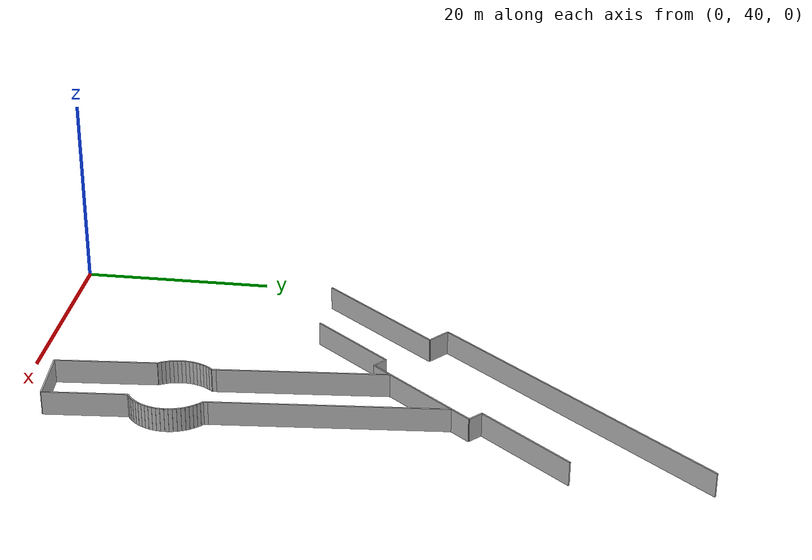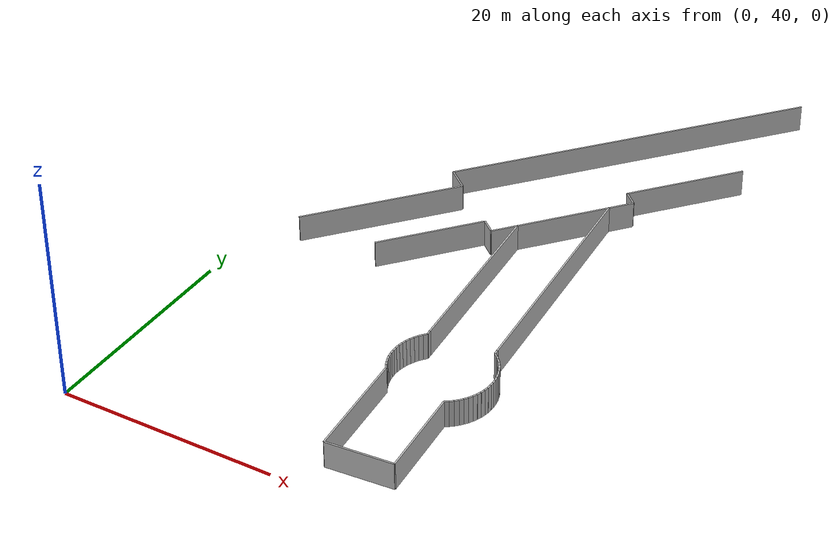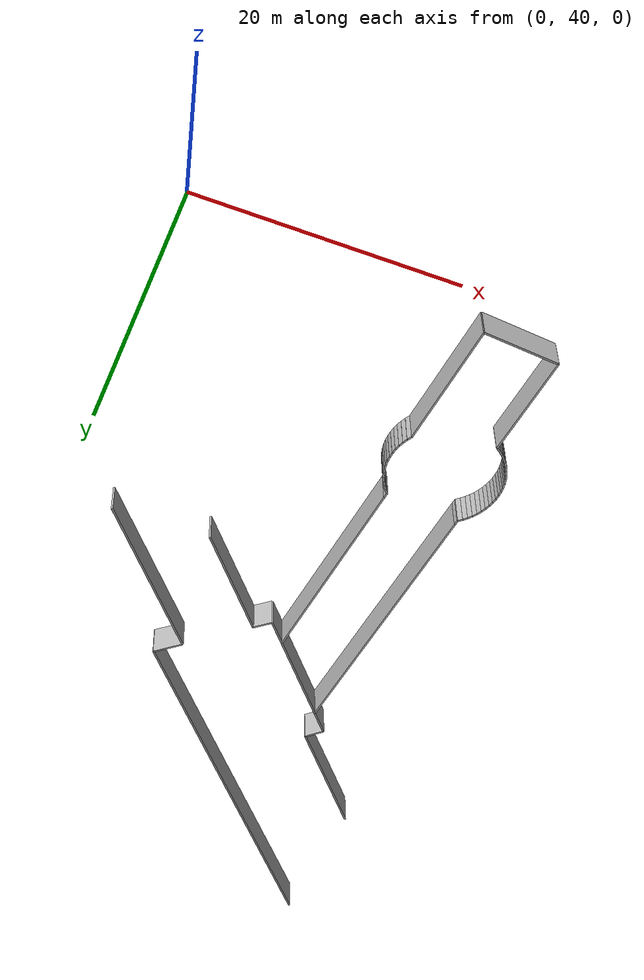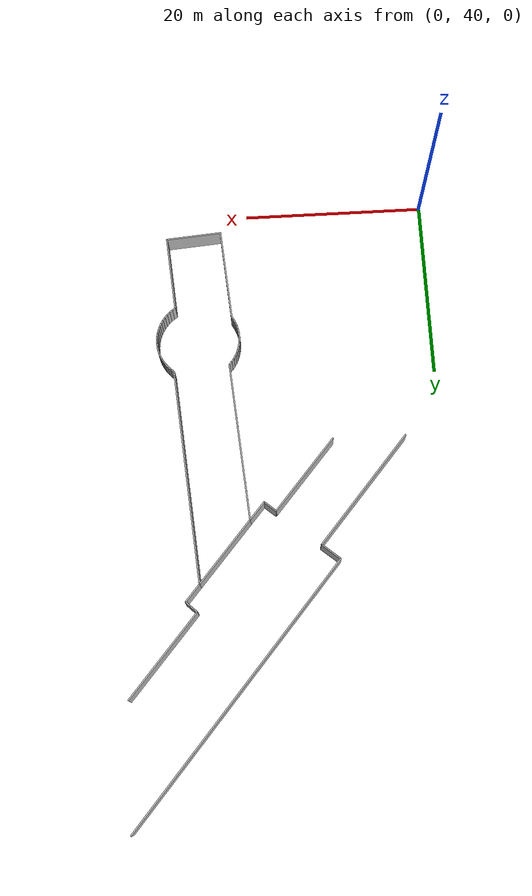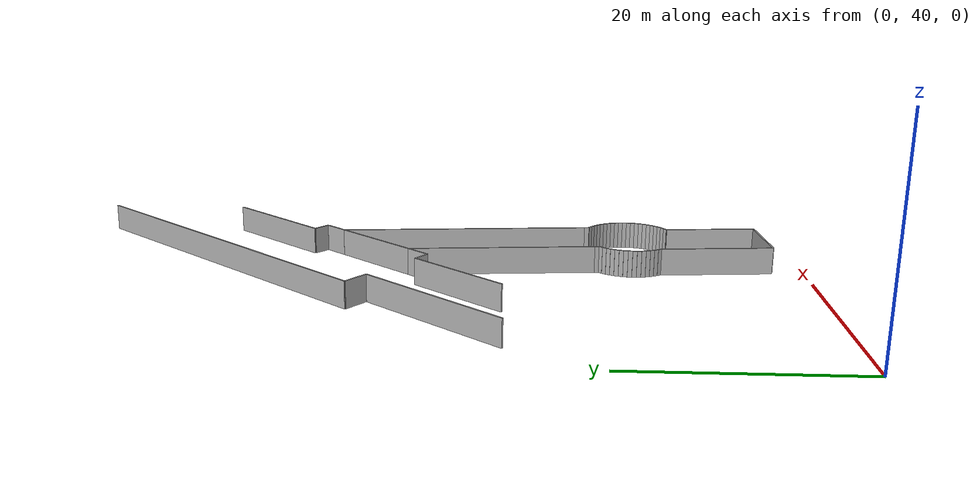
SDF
<?xml version="1.0" ?>
<sdf version="1.6">
  <model name="sps_0419">
    <pose frame="">0 0 0 0 -0 0</pose>
    <static>1</static>
    <self_collide>0</self_collide>
    <allow_auto_disable>0</allow_auto_disable>
    <link name="Wall34">
      <kinematic>0</kinematic>
      <gravity>1</gravity>
      <self_collide>0</self_collide>
      <collision name="collision">
        <geometry>
          <box>
            <size>15.2064 0.15 2.5</size>
          </box>
        </geometry>
        <pose frame="">0 0 0 0 -0 0</pose>
      </collision>
      <visual name="visual">
        <geometry>
          <box>
            <size>15.2064 0.15 2.5</size>
          </box>
        </geometry>
        <pose frame="">0 0 0 0 -0 0</pose>
        <cast_shadows>1</cast_shadows>
        <transparency>0.0</transparency>
      </visual>
      <pose frame="">8.95257 73.6938 1.25 0 0 -2.27376</pose>
    </link>
    <link name="Wall41">
      <kinematic>0</kinematic>
      <gravity>1</gravity>
      <self_collide>0</self_collide>
      <collision name="collision">
        <geometry>
          <box>
            <size>10.116 0.15 2.5</size>
          </box>
        </geometry>
        <pose frame="">0 0 0 0 -0 0</pose>
      </collision>
      <visual name="visual">
        <geometry>
          <box>
            <size>10.116 0.15 2.5</size>
          </box>
        </geometry>
        <pose frame="">0 0 0 0 -0 0</pose>
        <cast_shadows>1</cast_shadows>
        <transparency>0.0</transparency>
      </visual>
      <pose frame="">15.181 71.753 1.25 0 -0 0.868142</pose>
    </link>
    <link name="Wall42">
      <kinematic>0</kinematic>
      <gravity>1</gravity>
      <self_collide>0</self_collide>
      <collision name="collision">
        <geometry>
          <box>
            <size>1.60706 0.15 2.5</size>
          </box>
        </geometry>
        <pose frame="">0 0 0 0 -0 0</pose>
      </collision>
      <visual name="visual">
        <geometry>
          <box>
            <size>1.60706 0.15 2.5</size>
          </box>
        </geometry>
        <pose frame="">0 0 0 0 -0 0</pose>
        <cast_shadows>1</cast_shadows>
        <transparency>0.0</transparency>
      </visual>
      <pose frame="">19.0619 75.0924 1.25 0 0 -0.70461</pose>
    </link>
    <link name="Wall43">
      <kinematic>0</kinematic>
      <gravity>1</gravity>
      <self_collide>0</self_collide>
      <collision name="collision">
        <geometry>
          <box>
            <size>2.44092 0.15 2.5</size>
          </box>
        </geometry>
        <pose frame="">0 0 0 0 -0 0</pose>
      </collision>
      <visual name="visual">
        <geometry>
          <box>
            <size>2.44092 0.15 2.5</size>
          </box>
        </geometry>
        <pose frame="">0 0 0 0 -0 0</pose>
        <cast_shadows>1</cast_shadows>
        <transparency>0.0</transparency>
      </visual>
      <pose frame="">20.4654 75.501 1.25 0 -0 0.865243</pose>
    </link>
    <link name="Wall44">
      <kinematic>0</kinematic>
      <gravity>1</gravity>
      <self_collide>0</self_collide>
      <collision name="collision">
        <geometry>
          <box>
            <size>1.62048 0.15 2.5</size>
          </box>
        </geometry>
        <pose frame="">0 0 0 0 -0 0</pose>
      </collision>
      <visual name="visual">
        <geometry>
          <box>
            <size>1.62048 0.15 2.5</size>
          </box>
        </geometry>
        <pose frame="">0 0 0 0 -0 0</pose>
        <cast_shadows>1</cast_shadows>
        <transparency>0.0</transparency>
      </visual>
      <pose frame="">27.7577 85.3554 1.25 0 0 -0.759801</pose>
    </link>
    <link name="Wall206">
      <kinematic>0</kinematic>
      <gravity>1</gravity>
      <self_collide>0</self_collide>
      <collision name="collision">
        <geometry>
          <box>
            <size>2.50517 0.15 2.5</size>
          </box>
        </geometry>
        <pose frame="">0 0 0 0 -0 0</pose>
      </collision>
      <visual name="visual">
        <geometry>
          <box>
            <size>2.50517 0.15 2.5</size>
          </box>
        </geometry>
        <pose frame="">0 0 0 0 -0 0</pose>
        <cast_shadows>1</cast_shadows>
        <transparency>0.0</transparency>
      </visual>
      <pose frame="">12.9123 80.3043 1.25 0 -0 2.43862</pose>
    </link>
    <link name="Wall444">
      <kinematic>0</kinematic>
      <gravity>1</gravity>
      <self_collide>0</self_collide>
      <collision name="collision">
        <geometry>
          <box>
            <size>34.8178 0.15 2.5</size>
          </box>
        </geometry>
        <pose frame="">0 0 0 0 -0 0</pose>
      </collision>
      <visual name="visual">
        <geometry>
          <box>
            <size>34.8178 0.15 2.5</size>
          </box>
        </geometry>
        <pose frame="">0 0 0 0 -0 0</pose>
        <cast_shadows>1</cast_shadows>
        <transparency>0.0</transparency>
      </visual>
      <pose frame="">23.213 94.3943 1.25 0 -0 0.867691</pose>
    </link>
    <link name="Wall551">
      <kinematic>0</kinematic>
      <gravity>1</gravity>
      <self_collide>0</self_collide>
      <collision name="collision">
        <geometry>
          <box>
            <size>2.33975 0.15 2.5</size>
          </box>
        </geometry>
        <pose frame="">0 0 0 0 -0 0</pose>
      </collision>
      <visual name="visual">
        <geometry>
          <box>
            <size>2.33975 0.15 2.5</size>
          </box>
        </geometry>
        <pose frame="">0 0 0 0 -0 0</pose>
        <cast_shadows>1</cast_shadows>
        <transparency>0.0</transparency>
      </visual>
      <pose frame="">27.589 83.9046 1.25 0 0 -2.27354</pose>
    </link>
    <link name="Wall619">
      <kinematic>0</kinematic>
      <gravity>1</gravity>
      <self_collide>0</self_collide>
      <collision name="collision">
        <geometry>
          <box>
            <size>11.2896 0.15 2.5</size>
          </box>
        </geometry>
        <pose frame="">0 0 0 0 -0 0</pose>
      </collision>
      <visual name="visual">
        <geometry>
          <box>
            <size>11.2896 0.15 2.5</size>
          </box>
        </geometry>
        <pose frame="">0 0 0 0 -0 0</pose>
        <cast_shadows>1</cast_shadows>
        <transparency>0.0</transparency>
      </visual>
      <pose frame="">30.8198 90.2198 1.25 0 -0 0.867753</pose>
    </link>
    <link name="Wall868">
      <kinematic>0</kinematic>
      <gravity>1</gravity>
      <self_collide>0</self_collide>
      <collision name="collision">
        <geometry>
          <box>
            <size>8.62596 0.15 2.5</size>
          </box>
        </geometry>
        <pose frame="">0 0 0 0 -0 0</pose>
      </collision>
      <visual name="visual">
        <geometry>
          <box>
            <size>8.62596 0.15 2.5</size>
          </box>
        </geometry>
        <pose frame="">0 0 0 0 -0 0</pose>
        <cast_shadows>1</cast_shadows>
        <transparency>0.0</transparency>
      </visual>
      <pose frame="">24.0449 79.7201 1.25 0 -0 0.867941</pose>
    </link>
    <link name="Wall869">
      <kinematic>0</kinematic>
      <gravity>1</gravity>
      <self_collide>0</self_collide>
      <collision name="collision">
        <geometry>
          <box>
            <size>23.2917 0.15 2.5</size>
          </box>
        </geometry>
        <pose frame="">0 0 0 0 -0 0</pose>
      </collision>
      <visual name="visual">
        <geometry>
          <box>
            <size>23.2917 0.15 2.5</size>
          </box>
        </geometry>
        <pose frame="">0 0 0 0 -0 0</pose>
        <cast_shadows>1</cast_shadows>
        <transparency>0.0</transparency>
      </visual>
      <pose frame="">27.8028 71.4055 1.25 0 0 -1.48741</pose>
    </link>
    <link name="Wall870">
      <kinematic>0</kinematic>
      <gravity>1</gravity>
      <self_collide>0</self_collide>
      <collision name="collision">
        <geometry>
          <box>
            <size>0.421421 0.15 2.5</size>
          </box>
        </geometry>
        <pose frame="">0 0 0 0 -0 0</pose>
      </collision>
      <visual name="visual">
        <geometry>
          <box>
            <size>0.421421 0.15 2.5</size>
          </box>
        </geometry>
        <pose frame="">0 0 0 0 -0 0</pose>
        <cast_shadows>1</cast_shadows>
        <transparency>0.0</transparency>
      </visual>
      <pose frame="">28.7902 59.5901 1.25 0 0 -1.48815</pose>
    </link>
    <link name="Wall871">
      <kinematic>0</kinematic>
      <gravity>1</gravity>
      <self_collide>0</self_collide>
      <collision name="collision">
        <geometry>
          <box>
            <size>0.399021 0.15 2.5</size>
          </box>
        </geometry>
        <pose frame="">0 0 0 0 -0 0</pose>
      </collision>
      <visual name="visual">
        <geometry>
          <box>
            <size>0.399021 0.15 2.5</size>
          </box>
        </geometry>
        <pose frame="">0 0 0 0 -0 0</pose>
        <cast_shadows>1</cast_shadows>
        <transparency>0.0</transparency>
      </visual>
      <pose frame="">28.9608 59.2523 1.25 0 0 -0.695287</pose>
    </link>
    <link name="Wall872">
      <kinematic>0</kinematic>
      <gravity>1</gravity>
      <self_collide>0</self_collide>
      <collision name="collision">
        <geometry>
          <box>
            <size>0.398958 0.15 2.5</size>
          </box>
        </geometry>
        <pose frame="">0 0 0 0 -0 0</pose>
      </collision>
      <visual name="visual">
        <geometry>
          <box>
            <size>0.398958 0.15 2.5</size>
          </box>
        </geometry>
        <pose frame="">0 0 0 0 -0 0</pose>
        <cast_shadows>1</cast_shadows>
        <transparency>0.0</transparency>
      </visual>
      <pose frame="">29.2555 58.9839 1.25 0 0 -0.782153</pose>
    </link>
    <link name="Wall873">
      <kinematic>0</kinematic>
      <gravity>1</gravity>
      <self_collide>0</self_collide>
      <collision name="collision">
        <geometry>
          <box>
            <size>0.398966 0.15 2.5</size>
          </box>
        </geometry>
        <pose frame="">0 0 0 0 -0 0</pose>
      </collision>
      <visual name="visual">
        <geometry>
          <box>
            <size>0.398966 0.15 2.5</size>
          </box>
        </geometry>
        <pose frame="">0 0 0 0 -0 0</pose>
        <cast_shadows>1</cast_shadows>
        <transparency>0.0</transparency>
      </visual>
      <pose frame="">29.5257 58.6908 1.25 0 0 -0.870201</pose>
    </link>
    <link name="Wall874">
      <kinematic>0</kinematic>
      <gravity>1</gravity>
      <self_collide>0</self_collide>
      <collision name="collision">
        <geometry>
          <box>
            <size>0.398946 0.15 2.5</size>
          </box>
        </geometry>
        <pose frame="">0 0 0 0 -0 0</pose>
      </collision>
      <visual name="visual">
        <geometry>
          <box>
            <size>0.398946 0.15 2.5</size>
          </box>
        </geometry>
        <pose frame="">0 0 0 0 -0 0</pose>
        <cast_shadows>1</cast_shadows>
        <transparency>0.0</transparency>
      </visual>
      <pose frame="">29.7689 58.3751 1.25 0 0 -0.958266</pose>
    </link>
    <link name="Wall875">
      <kinematic>0</kinematic>
      <gravity>1</gravity>
      <self_collide>0</self_collide>
      <collision name="collision">
        <geometry>
          <box>
            <size>0.398919 0.15 2.5</size>
          </box>
        </geometry>
        <pose frame="">0 0 0 0 -0 0</pose>
      </collision>
      <visual name="visual">
        <geometry>
          <box>
            <size>0.398919 0.15 2.5</size>
          </box>
        </geometry>
        <pose frame="">0 0 0 0 -0 0</pose>
        <cast_shadows>1</cast_shadows>
        <transparency>0.0</transparency>
      </visual>
      <pose frame="">29.9836 58.0393 1.25 0 0 -1.0456</pose>
    </link>
    <link name="Wall876">
      <kinematic>0</kinematic>
      <gravity>1</gravity>
      <self_collide>0</self_collide>
      <collision name="collision">
        <geometry>
          <box>
            <size>0.399011 0.15 2.5</size>
          </box>
        </geometry>
        <pose frame="">0 0 0 0 -0 0</pose>
      </collision>
      <visual name="visual">
        <geometry>
          <box>
            <size>0.399011 0.15 2.5</size>
          </box>
        </geometry>
        <pose frame="">0 0 0 0 -0 0</pose>
        <cast_shadows>1</cast_shadows>
        <transparency>0.0</transparency>
      </visual>
      <pose frame="">30.1681 57.686 1.25 0 0 -1.13342</pose>
    </link>
    <link name="Wall877">
      <kinematic>0</kinematic>
      <gravity>1</gravity>
      <self_collide>0</self_collide>
      <collision name="collision">
        <geometry>
          <box>
            <size>0.398874 0.15 2.5</size>
          </box>
        </geometry>
        <pose frame="">0 0 0 0 -0 0</pose>
      </collision>
      <visual name="visual">
        <geometry>
          <box>
            <size>0.398874 0.15 2.5</size>
          </box>
        </geometry>
        <pose frame="">0 0 0 0 -0 0</pose>
        <cast_shadows>1</cast_shadows>
        <transparency>0.0</transparency>
      </visual>
      <pose frame="">30.3209 57.3179 1.25 0 0 -1.22127</pose>
    </link>
    <link name="Wall878">
      <kinematic>0</kinematic>
      <gravity>1</gravity>
      <self_collide>0</self_collide>
      <collision name="collision">
        <geometry>
          <box>
            <size>0.399064 0.15 2.5</size>
          </box>
        </geometry>
        <pose frame="">0 0 0 0 -0 0</pose>
      </collision>
      <visual name="visual">
        <geometry>
          <box>
            <size>0.399064 0.15 2.5</size>
          </box>
        </geometry>
        <pose frame="">0 0 0 0 -0 0</pose>
        <cast_shadows>1</cast_shadows>
        <transparency>0.0</transparency>
      </visual>
      <pose frame="">30.4409 56.9378 1.25 0 0 -1.30872</pose>
    </link>
    <link name="Wall879">
      <kinematic>0</kinematic>
      <gravity>1</gravity>
      <self_collide>0</self_collide>
      <collision name="collision">
        <geometry>
          <box>
            <size>0.399022 0.15 2.5</size>
          </box>
        </geometry>
        <pose frame="">0 0 0 0 -0 0</pose>
      </collision>
      <visual name="visual">
        <geometry>
          <box>
            <size>0.399022 0.15 2.5</size>
          </box>
        </geometry>
        <pose frame="">0 0 0 0 -0 0</pose>
        <cast_shadows>1</cast_shadows>
        <transparency>0.0</transparency>
      </visual>
      <pose frame="">30.5272 56.5486 1.25 0 0 -1.39692</pose>
    </link>
    <link name="Wall880">
      <kinematic>0</kinematic>
      <gravity>1</gravity>
      <self_collide>0</self_collide>
      <collision name="collision">
        <geometry>
          <box>
            <size>0.398883 0.15 2.5</size>
          </box>
        </geometry>
        <pose frame="">0 0 0 0 -0 0</pose>
      </collision>
      <visual name="visual">
        <geometry>
          <box>
            <size>0.398883 0.15 2.5</size>
          </box>
        </geometry>
        <pose frame="">0 0 0 0 -0 0</pose>
        <cast_shadows>1</cast_shadows>
        <transparency>0.0</transparency>
      </visual>
      <pose frame="">30.5788 56.1534 1.25 0 0 -1.48454</pose>
    </link>
    <link name="Wall881">
      <kinematic>0</kinematic>
      <gravity>1</gravity>
      <self_collide>0</self_collide>
      <collision name="collision">
        <geometry>
          <box>
            <size>0.398987 0.15 2.5</size>
          </box>
        </geometry>
        <pose frame="">0 0 0 0 -0 0</pose>
      </collision>
      <visual name="visual">
        <geometry>
          <box>
            <size>0.398987 0.15 2.5</size>
          </box>
        </geometry>
        <pose frame="">0 0 0 0 -0 0</pose>
        <cast_shadows>1</cast_shadows>
        <transparency>0.0</transparency>
      </visual>
      <pose frame="">30.5958 55.7552 1.25 0 0 -1.57171</pose>
    </link>
    <link name="Wall882">
      <kinematic>0</kinematic>
      <gravity>1</gravity>
      <self_collide>0</self_collide>
      <collision name="collision">
        <geometry>
          <box>
            <size>0.398974 0.15 2.5</size>
          </box>
        </geometry>
        <pose frame="">0 0 0 0 -0 0</pose>
      </collision>
      <visual name="visual">
        <geometry>
          <box>
            <size>0.398974 0.15 2.5</size>
          </box>
        </geometry>
        <pose frame="">0 0 0 0 -0 0</pose>
        <cast_shadows>1</cast_shadows>
        <transparency>0.0</transparency>
      </visual>
      <pose frame="">30.578 55.357 1.25 0 0 -1.65964</pose>
    </link>
    <link name="Wall883">
      <kinematic>0</kinematic>
      <gravity>1</gravity>
      <self_collide>0</self_collide>
      <collision name="collision">
        <geometry>
          <box>
            <size>0.398984 0.15 2.5</size>
          </box>
        </geometry>
        <pose frame="">0 0 0 0 -0 0</pose>
      </collision>
      <visual name="visual">
        <geometry>
          <box>
            <size>0.398984 0.15 2.5</size>
          </box>
        </geometry>
        <pose frame="">0 0 0 0 -0 0</pose>
        <cast_shadows>1</cast_shadows>
        <transparency>0.0</transparency>
      </visual>
      <pose frame="">30.5252 54.9619 1.25 0 0 -1.74764</pose>
    </link>
    <link name="Wall884">
      <kinematic>0</kinematic>
      <gravity>1</gravity>
      <self_collide>0</self_collide>
      <collision name="collision">
        <geometry>
          <box>
            <size>0.398874 0.15 2.5</size>
          </box>
        </geometry>
        <pose frame="">0 0 0 0 -0 0</pose>
      </collision>
      <visual name="visual">
        <geometry>
          <box>
            <size>0.398874 0.15 2.5</size>
          </box>
        </geometry>
        <pose frame="">0 0 0 0 -0 0</pose>
        <cast_shadows>1</cast_shadows>
        <transparency>0.0</transparency>
      </visual>
      <pose frame="">30.4379 54.573 1.25 0 0 -1.83522</pose>
    </link>
    <link name="Wall885">
      <kinematic>0</kinematic>
      <gravity>1</gravity>
      <self_collide>0</self_collide>
      <collision name="collision">
        <geometry>
          <box>
            <size>0.399095 0.15 2.5</size>
          </box>
        </geometry>
        <pose frame="">0 0 0 0 -0 0</pose>
      </collision>
      <visual name="visual">
        <geometry>
          <box>
            <size>0.399095 0.15 2.5</size>
          </box>
        </geometry>
        <pose frame="">0 0 0 0 -0 0</pose>
        <cast_shadows>1</cast_shadows>
        <transparency>0.0</transparency>
      </visual>
      <pose frame="">30.317 54.1932 1.25 0 0 -1.92273</pose>
    </link>
    <link name="Wall886">
      <kinematic>0</kinematic>
      <gravity>1</gravity>
      <self_collide>0</self_collide>
      <collision name="collision">
        <geometry>
          <box>
            <size>0.39874 0.15 2.5</size>
          </box>
        </geometry>
        <pose frame="">0 0 0 0 -0 0</pose>
      </collision>
      <visual name="visual">
        <geometry>
          <box>
            <size>0.39874 0.15 2.5</size>
          </box>
        </geometry>
        <pose frame="">0 0 0 0 -0 0</pose>
        <cast_shadows>1</cast_shadows>
        <transparency>0.0</transparency>
      </visual>
      <pose frame="">30.1634 53.8255 1.25 0 0 -2.01069</pose>
    </link>
    <link name="Wall887">
      <kinematic>0</kinematic>
      <gravity>1</gravity>
      <self_collide>0</self_collide>
      <collision name="collision">
        <geometry>
          <box>
            <size>0.399001 0.15 2.5</size>
          </box>
        </geometry>
        <pose frame="">0 0 0 0 -0 0</pose>
      </collision>
      <visual name="visual">
        <geometry>
          <box>
            <size>0.399001 0.15 2.5</size>
          </box>
        </geometry>
        <pose frame="">0 0 0 0 -0 0</pose>
        <cast_shadows>1</cast_shadows>
        <transparency>0.0</transparency>
      </visual>
      <pose frame="">29.978 53.4727 1.25 0 0 -2.09818</pose>
    </link>
    <link name="Wall888">
      <kinematic>0</kinematic>
      <gravity>1</gravity>
      <self_collide>0</self_collide>
      <collision name="collision">
        <geometry>
          <box>
            <size>0.399045 0.15 2.5</size>
          </box>
        </geometry>
        <pose frame="">0 0 0 0 -0 0</pose>
      </collision>
      <visual name="visual">
        <geometry>
          <box>
            <size>0.399045 0.15 2.5</size>
          </box>
        </geometry>
        <pose frame="">0 0 0 0 -0 0</pose>
        <cast_shadows>1</cast_shadows>
        <transparency>0.0</transparency>
      </visual>
      <pose frame="">29.7624 53.1374 1.25 0 0 -2.18633</pose>
    </link>
    <link name="Wall889">
      <kinematic>0</kinematic>
      <gravity>1</gravity>
      <self_collide>0</self_collide>
      <collision name="collision">
        <geometry>
          <box>
            <size>0.399012 0.15 2.5</size>
          </box>
        </geometry>
        <pose frame="">0 0 0 0 -0 0</pose>
      </collision>
      <visual name="visual">
        <geometry>
          <box>
            <size>0.399012 0.15 2.5</size>
          </box>
        </geometry>
        <pose frame="">0 0 0 0 -0 0</pose>
        <cast_shadows>1</cast_shadows>
        <transparency>0.0</transparency>
      </visual>
      <pose frame="">29.5182 52.8223 1.25 0 0 -2.2739</pose>
    </link>
    <link name="Wall890">
      <kinematic>0</kinematic>
      <gravity>1</gravity>
      <self_collide>0</self_collide>
      <collision name="collision">
        <geometry>
          <box>
            <size>0.398831 0.15 2.5</size>
          </box>
        </geometry>
        <pose frame="">0 0 0 0 -0 0</pose>
      </collision>
      <visual name="visual">
        <geometry>
          <box>
            <size>0.398831 0.15 2.5</size>
          </box>
        </geometry>
        <pose frame="">0 0 0 0 -0 0</pose>
        <cast_shadows>1</cast_shadows>
        <transparency>0.0</transparency>
      </visual>
      <pose frame="">29.2476 52.5298 1.25 0 0 -2.36106</pose>
    </link>
    <link name="Wall891">
      <kinematic>0</kinematic>
      <gravity>1</gravity>
      <self_collide>0</self_collide>
      <collision name="collision">
        <geometry>
          <box>
            <size>0.399085 0.15 2.5</size>
          </box>
        </geometry>
        <pose frame="">0 0 0 0 -0 0</pose>
      </collision>
      <visual name="visual">
        <geometry>
          <box>
            <size>0.399085 0.15 2.5</size>
          </box>
        </geometry>
        <pose frame="">0 0 0 0 -0 0</pose>
        <cast_shadows>1</cast_shadows>
        <transparency>0.0</transparency>
      </visual>
      <pose frame="">28.9523 52.2621 1.25 0 0 -2.44922</pose>
    </link>
    <link name="Wall892">
      <kinematic>0</kinematic>
      <gravity>1</gravity>
      <self_collide>0</self_collide>
      <collision name="collision">
        <geometry>
          <box>
            <size>0.398933 0.15 2.5</size>
          </box>
        </geometry>
        <pose frame="">0 0 0 0 -0 0</pose>
      </collision>
      <visual name="visual">
        <geometry>
          <box>
            <size>0.398933 0.15 2.5</size>
          </box>
        </geometry>
        <pose frame="">0 0 0 0 -0 0</pose>
        <cast_shadows>1</cast_shadows>
        <transparency>0.0</transparency>
      </visual>
      <pose frame="">28.6346 52.0213 1.25 0 0 -2.53687</pose>
    </link>
    <link name="Wall893">
      <kinematic>0</kinematic>
      <gravity>1</gravity>
      <self_collide>0</self_collide>
      <collision name="collision">
        <geometry>
          <box>
            <size>8.45931 0.15 2.5</size>
          </box>
        </geometry>
        <pose frame="">0 0 0 0 -0 0</pose>
      </collision>
      <visual name="visual">
        <geometry>
          <box>
            <size>8.45931 0.15 2.5</size>
          </box>
        </geometry>
        <pose frame="">0 0 0 0 -0 0</pose>
        <cast_shadows>1</cast_shadows>
        <transparency>0.0</transparency>
      </visual>
      <pose frame="">28.8187 47.6926 1.25 0 0 -1.48839</pose>
    </link>
    <link name="Wall894">
      <kinematic>0</kinematic>
      <gravity>1</gravity>
      <self_collide>0</self_collide>
      <collision name="collision">
        <geometry>
          <box>
            <size>6.1005 0.15 2.5</size>
          </box>
        </geometry>
        <pose frame="">0 0 0 0 -0 0</pose>
      </collision>
      <visual name="visual">
        <geometry>
          <box>
            <size>6.1005 0.15 2.5</size>
          </box>
        </geometry>
        <pose frame="">0 0 0 0 -0 0</pose>
        <cast_shadows>1</cast_shadows>
        <transparency>0.0</transparency>
      </visual>
      <pose frame="">26.1269 43.2261 1.25 0 0 -3.05914</pose>
    </link>
    <link name="Wall895">
      <kinematic>0</kinematic>
      <gravity>1</gravity>
      <self_collide>0</self_collide>
      <collision name="collision">
        <geometry>
          <box>
            <size>10.3235 0.15 2.5</size>
          </box>
        </geometry>
        <pose frame="">0 0 0 0 -0 0</pose>
      </collision>
      <visual name="visual">
        <geometry>
          <box>
            <size>10.3235 0.15 2.5</size>
          </box>
        </geometry>
        <pose frame="">0 0 0 0 -0 0</pose>
        <cast_shadows>1</cast_shadows>
        <transparency>0.0</transparency>
      </visual>
      <pose frame="">22.6623 48.1191 1.25 0 -0 1.65319</pose>
    </link>
    <link name="Wall896">
      <kinematic>0</kinematic>
      <gravity>1</gravity>
      <self_collide>0</self_collide>
      <collision name="collision">
        <geometry>
          <box>
            <size>0.405145 0.15 2.5</size>
          </box>
        </geometry>
        <pose frame="">0 0 0 0 -0 0</pose>
      </collision>
      <visual name="visual">
        <geometry>
          <box>
            <size>0.405145 0.15 2.5</size>
          </box>
        </geometry>
        <pose frame="">0 0 0 0 -0 0</pose>
        <cast_shadows>1</cast_shadows>
        <transparency>0.0</transparency>
      </visual>
      <pose frame="">22.1338 53.4374 1.25 0 -0 2.10768</pose>
    </link>
    <link name="Wall897">
      <kinematic>0</kinematic>
      <gravity>1</gravity>
      <self_collide>0</self_collide>
      <collision name="collision">
        <geometry>
          <box>
            <size>0.405584 0.15 2.5</size>
          </box>
        </geometry>
        <pose frame="">0 0 0 0 -0 0</pose>
      </collision>
      <visual name="visual">
        <geometry>
          <box>
            <size>0.405584 0.15 2.5</size>
          </box>
        </geometry>
        <pose frame="">0 0 0 0 -0 0</pose>
        <cast_shadows>1</cast_shadows>
        <transparency>0.0</transparency>
      </visual>
      <pose frame="">21.9424 53.7943 1.25 0 -0 2.01856</pose>
    </link>
    <link name="Wall898">
      <kinematic>0</kinematic>
      <gravity>1</gravity>
      <self_collide>0</self_collide>
      <collision name="collision">
        <geometry>
          <box>
            <size>0.405208 0.15 2.5</size>
          </box>
        </geometry>
        <pose frame="">0 0 0 0 -0 0</pose>
      </collision>
      <visual name="visual">
        <geometry>
          <box>
            <size>0.405208 0.15 2.5</size>
          </box>
        </geometry>
        <pose frame="">0 0 0 0 -0 0</pose>
        <cast_shadows>1</cast_shadows>
        <transparency>0.0</transparency>
      </visual>
      <pose frame="">21.7836 54.1668 1.25 0 -0 1.92923</pose>
    </link>
    <link name="Wall899">
      <kinematic>0</kinematic>
      <gravity>1</gravity>
      <self_collide>0</self_collide>
      <collision name="collision">
        <geometry>
          <box>
            <size>0.405358 0.15 2.5</size>
          </box>
        </geometry>
        <pose frame="">0 0 0 0 -0 0</pose>
      </collision>
      <visual name="visual">
        <geometry>
          <box>
            <size>0.405358 0.15 2.5</size>
          </box>
        </geometry>
        <pose frame="">0 0 0 0 -0 0</pose>
        <cast_shadows>1</cast_shadows>
        <transparency>0.0</transparency>
      </visual>
      <pose frame="">21.6586 54.5519 1.25 0 -0 1.8401</pose>
    </link>
    <link name="Wall900">
      <kinematic>0</kinematic>
      <gravity>1</gravity>
      <self_collide>0</self_collide>
      <collision name="collision">
        <geometry>
          <box>
            <size>0.405353 0.15 2.5</size>
          </box>
        </geometry>
        <pose frame="">0 0 0 0 -0 0</pose>
      </collision>
      <visual name="visual">
        <geometry>
          <box>
            <size>0.405353 0.15 2.5</size>
          </box>
        </geometry>
        <pose frame="">0 0 0 0 -0 0</pose>
        <cast_shadows>1</cast_shadows>
        <transparency>0.0</transparency>
      </visual>
      <pose frame="">21.5684 54.9467 1.25 0 -0 1.7508</pose>
    </link>
    <link name="Wall901">
      <kinematic>0</kinematic>
      <gravity>1</gravity>
      <self_collide>0</self_collide>
      <collision name="collision">
        <geometry>
          <box>
            <size>0.405317 0.15 2.5</size>
          </box>
        </geometry>
        <pose frame="">0 0 0 0 -0 0</pose>
      </collision>
      <visual name="visual">
        <geometry>
          <box>
            <size>0.405317 0.15 2.5</size>
          </box>
        </geometry>
        <pose frame="">0 0 0 0 -0 0</pose>
        <cast_shadows>1</cast_shadows>
        <transparency>0.0</transparency>
      </visual>
      <pose frame="">21.5136 55.3479 1.25 0 -0 1.66218</pose>
    </link>
    <link name="Wall902">
      <kinematic>0</kinematic>
      <gravity>1</gravity>
      <self_collide>0</self_collide>
      <collision name="collision">
        <geometry>
          <box>
            <size>0.405396 0.15 2.5</size>
          </box>
        </geometry>
        <pose frame="">0 0 0 0 -0 0</pose>
      </collision>
      <visual name="visual">
        <geometry>
          <box>
            <size>0.405396 0.15 2.5</size>
          </box>
        </geometry>
        <pose frame="">0 0 0 0 -0 0</pose>
        <cast_shadows>1</cast_shadows>
        <transparency>0.0</transparency>
      </visual>
      <pose frame="">21.4947 55.7524 1.25 0 -0 1.57275</pose>
    </link>
    <link name="Wall903">
      <kinematic>0</kinematic>
      <gravity>1</gravity>
      <self_collide>0</self_collide>
      <collision name="collision">
        <geometry>
          <box>
            <size>0.405336 0.15 2.5</size>
          </box>
        </geometry>
        <pose frame="">0 0 0 0 -0 0</pose>
      </collision>
      <visual name="visual">
        <geometry>
          <box>
            <size>0.405336 0.15 2.5</size>
          </box>
        </geometry>
        <pose frame="">0 0 0 0 -0 0</pose>
        <cast_shadows>1</cast_shadows>
        <transparency>0.0</transparency>
      </visual>
      <pose frame="">21.5119 56.157 1.25 0 -0 1.48395</pose>
    </link>
    <link name="Wall904">
      <kinematic>0</kinematic>
      <gravity>1</gravity>
      <self_collide>0</self_collide>
      <collision name="collision">
        <geometry>
          <box>
            <size>0.405263 0.15 2.5</size>
          </box>
        </geometry>
        <pose frame="">0 0 0 0 -0 0</pose>
      </collision>
      <visual name="visual">
        <geometry>
          <box>
            <size>0.405263 0.15 2.5</size>
          </box>
        </geometry>
        <pose frame="">0 0 0 0 -0 0</pose>
        <cast_shadows>1</cast_shadows>
        <transparency>0.0</transparency>
      </visual>
      <pose frame="">21.565 56.5584 1.25 0 -0 1.39458</pose>
    </link>
    <link name="Wall905">
      <kinematic>0</kinematic>
      <gravity>1</gravity>
      <self_collide>0</self_collide>
      <collision name="collision">
        <geometry>
          <box>
            <size>0.405441 0.15 2.5</size>
          </box>
        </geometry>
        <pose frame="">0 0 0 0 -0 0</pose>
      </collision>
      <visual name="visual">
        <geometry>
          <box>
            <size>0.405441 0.15 2.5</size>
          </box>
        </geometry>
        <pose frame="">0 0 0 0 -0 0</pose>
        <cast_shadows>1</cast_shadows>
        <transparency>0.0</transparency>
      </visual>
      <pose frame="">21.6537 56.9535 1.25 0 -0 1.3053</pose>
    </link>
    <link name="Wall906">
      <kinematic>0</kinematic>
      <gravity>1</gravity>
      <self_collide>0</self_collide>
      <collision name="collision">
        <geometry>
          <box>
            <size>0.405341 0.15 2.5</size>
          </box>
        </geometry>
        <pose frame="">0 0 0 0 -0 0</pose>
      </collision>
      <visual name="visual">
        <geometry>
          <box>
            <size>0.405341 0.15 2.5</size>
          </box>
        </geometry>
        <pose frame="">0 0 0 0 -0 0</pose>
        <cast_shadows>1</cast_shadows>
        <transparency>0.0</transparency>
      </visual>
      <pose frame="">21.7772 57.3392 1.25 0 -0 1.21666</pose>
    </link>
    <link name="Wall907">
      <kinematic>0</kinematic>
      <gravity>1</gravity>
      <self_collide>0</self_collide>
      <collision name="collision">
        <geometry>
          <box>
            <size>0.40523 0.15 2.5</size>
          </box>
        </geometry>
        <pose frame="">0 0 0 0 -0 0</pose>
      </collision>
      <visual name="visual">
        <geometry>
          <box>
            <size>0.40523 0.15 2.5</size>
          </box>
        </geometry>
        <pose frame="">0 0 0 0 -0 0</pose>
        <cast_shadows>1</cast_shadows>
        <transparency>0.0</transparency>
      </visual>
      <pose frame="">21.9344 57.7123 1.25 0 -0 1.12695</pose>
    </link>
    <link name="Wall908">
      <kinematic>0</kinematic>
      <gravity>1</gravity>
      <self_collide>0</self_collide>
      <collision name="collision">
        <geometry>
          <box>
            <size>0.405375 0.15 2.5</size>
          </box>
        </geometry>
        <pose frame="">0 0 0 0 -0 0</pose>
      </collision>
      <visual name="visual">
        <geometry>
          <box>
            <size>0.405375 0.15 2.5</size>
          </box>
        </geometry>
        <pose frame="">0 0 0 0 -0 0</pose>
        <cast_shadows>1</cast_shadows>
        <transparency>0.0</transparency>
      </visual>
      <pose frame="">22.1244 58.0699 1.25 0 -0 1.03828</pose>
    </link>
    <link name="Wall909">
      <kinematic>0</kinematic>
      <gravity>1</gravity>
      <self_collide>0</self_collide>
      <collision name="collision">
        <geometry>
          <box>
            <size>0.405491 0.15 2.5</size>
          </box>
        </geometry>
        <pose frame="">0 0 0 0 -0 0</pose>
      </collision>
      <visual name="visual">
        <geometry>
          <box>
            <size>0.405491 0.15 2.5</size>
          </box>
        </geometry>
        <pose frame="">0 0 0 0 -0 0</pose>
        <cast_shadows>1</cast_shadows>
        <transparency>0.0</transparency>
      </visual>
      <pose frame="">22.3454 58.4093 1.25 0 -0 0.948972</pose>
    </link>
    <link name="Wall910">
      <kinematic>0</kinematic>
      <gravity>1</gravity>
      <self_collide>0</self_collide>
      <collision name="collision">
        <geometry>
          <box>
            <size>0.40517 0.15 2.5</size>
          </box>
        </geometry>
        <pose frame="">0 0 0 0 -0 0</pose>
      </collision>
      <visual name="visual">
        <geometry>
          <box>
            <size>0.40517 0.15 2.5</size>
          </box>
        </geometry>
        <pose frame="">0 0 0 0 -0 0</pose>
        <cast_shadows>1</cast_shadows>
        <transparency>0.0</transparency>
      </visual>
      <pose frame="">22.5957 58.7276 1.25 0 -0 0.859817</pose>
    </link>
    <link name="Wall911">
      <kinematic>0</kinematic>
      <gravity>1</gravity>
      <self_collide>0</self_collide>
      <collision name="collision">
        <geometry>
          <box>
            <size>0.418198 0.15 2.5</size>
          </box>
        </geometry>
        <pose frame="">0 0 0 0 -0 0</pose>
      </collision>
      <visual name="visual">
        <geometry>
          <box>
            <size>0.418198 0.15 2.5</size>
          </box>
        </geometry>
        <pose frame="">0 0 0 0 -0 0</pose>
        <cast_shadows>1</cast_shadows>
        <transparency>0.0</transparency>
      </visual>
      <pose frame="">22.7105 59.0895 1.25 0 -0 1.65408</pose>
    </link>
    <link name="Wall912">
      <kinematic>0</kinematic>
      <gravity>1</gravity>
      <self_collide>0</self_collide>
      <collision name="collision">
        <geometry>
          <box>
            <size>17.1915 0.15 2.5</size>
          </box>
        </geometry>
        <pose frame="">0 0 0 0 -0 0</pose>
      </collision>
      <visual name="visual">
        <geometry>
          <box>
            <size>17.1915 0.15 2.5</size>
          </box>
        </geometry>
        <pose frame="">0 0 0 0 -0 0</pose>
        <cast_shadows>1</cast_shadows>
        <transparency>0.0</transparency>
      </visual>
      <pose frame="">21.9751 67.8636 1.25 0 -0 1.65443</pose>
    </link>
  </model>
</sdf>
